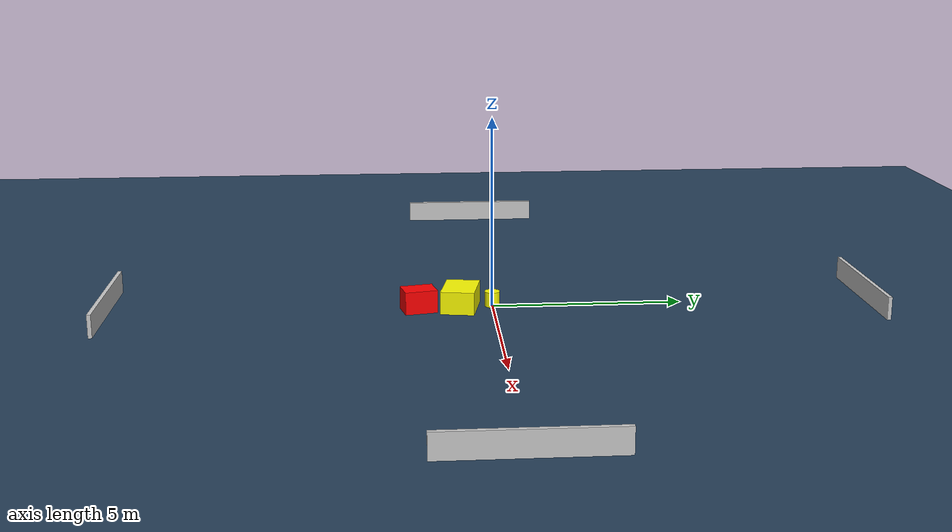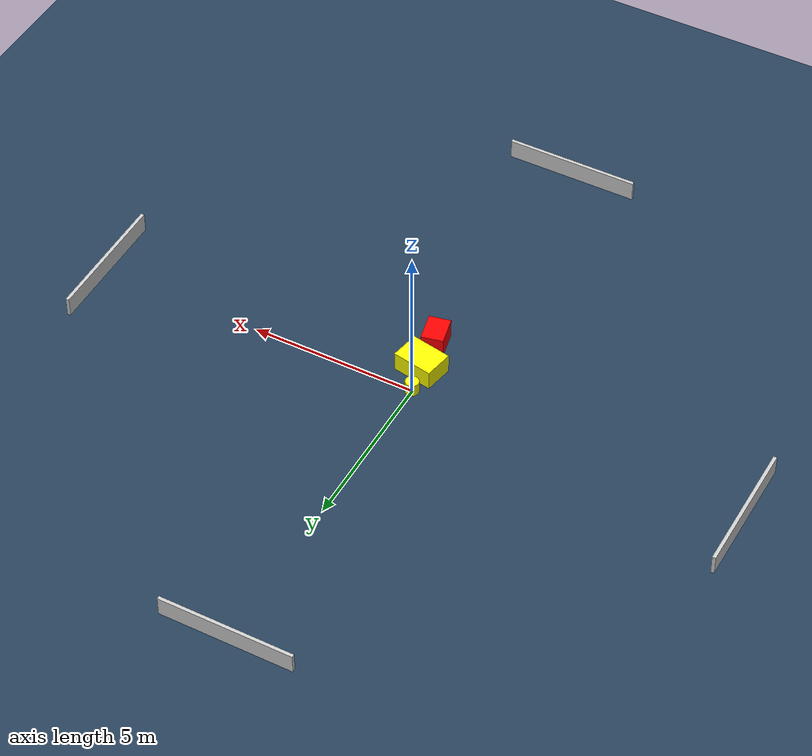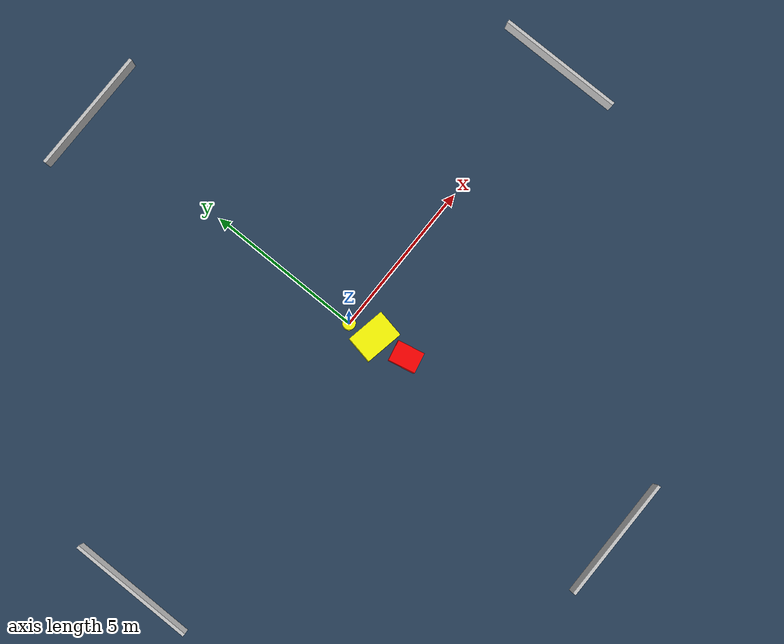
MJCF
<?xml version="1.0" ?>
<mujoco model="generated_environment">
  <option timestep="0.01" integrator="RK4" cone="elliptic"/>
  <default>
    <geom density="1"/>
  </default>
  <asset>
    <texture builtin="gradient" height="3072" name="skybox" rgb1="0.3 0.5 0.7" rgb2="0 0 0" type="skybox" width="512"/>
    <texture builtin="checker" height="300" name="groundplane" rgb1="0.2 0.3 0.4" rgb2="0.1 0.2 0.3" type="2d" width="300"/>
    <material name="groundplane" reflectance="0.2" texrepeat="5 5" texture="groundplane"/>
  </asset>
  <worldbody>
    <light dir="0 0 -1" directional="true" pos="0 0 1.5"/>
    <geom condim="3" friction="0.5 0.005 0.001" material="groundplane" name="floor" pos="0 0 0" size="0 0 0.05" type="plane"/>
    <body name="walls">
      <geom name="wall_1" condim="4" pos="-10.0 0.0 0.3" rgba="0.800000011920929 0.800000011920929 0.800000011920929 1.0" size="0.05 2.0 0.3" type="box"/>
      <geom name="wall_2" condim="4" pos="10.0 0.0 0.3" rgba="0.800000011920929 0.800000011920929 0.800000011920929 1.0" size="0.05 2.0 0.3" type="box"/>
      <geom name="wall_3" condim="4" pos="0.0 -10.0 0.3" rgba="0.800000011920929 0.800000011920929 0.800000011920929 1.0" size="2.0 0.05 0.3" type="box"/>
      <geom name="wall_4" condim="4" pos="0.0 10.0 0.3" rgba="0.800000011920929 0.800000011920929 0.800000011920929 1.0" size="2.0 0.05 0.3" type="box"/>
    </body>
    <body name="robot">
      <joint name="joint_x" type="slide" pos="0 0 0" axis="1 0 0"/>
      <joint name="joint_y" type="slide" pos="0 0 0" axis="0 1 0"/>
      <geom name="robot" type="cylinder" pos="0.0 0.0 0.2" size="0.2 0.2 0.0" mass="5.0" friction="1.0 0.005 0.0001" condim="4" rgba="1.0 1.0 0.0 1.0"/>
    </body>
    <body name="obstacle_1_movable">
      <geom name="obstacle_1_movable" condim="4" pos="0.15668093049036114 -0.8467318156962449 0.3" euler="0 0 259.4274603918925" friction="0.0 0.005 0.001" rgba="1.0 1.0 0.0 1.0" size="0.43996329962088654 0.6120795531545784 0.3" type="box" mass="0.1"/>
      <joint type="free"/>
    </body>
    <body name="obstacle_2_static">
      <geom name="obstacle_2_static" condim="4" pos="0.28602225302076706 -1.937176600077349 0.3" euler="0 0 12.249982522443275" friction="0.0 0.005 0.001" rgba="1.0 0.0 0.0 1.0" size="0.3242946663151449 0.42749087714567274 0.3" type="box"/>
    </body>
  </worldbody>
  <actuator>
    <motor name="actuator_x" joint="joint_x" gear="1" ctrlrange="-1 1"/>
    <motor name="actuator_y" joint="joint_y" gear="1" ctrlrange="-1 1"/>
  </actuator>
</mujoco>
